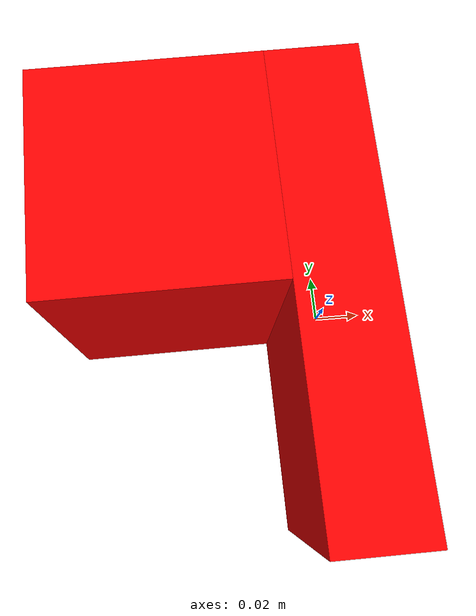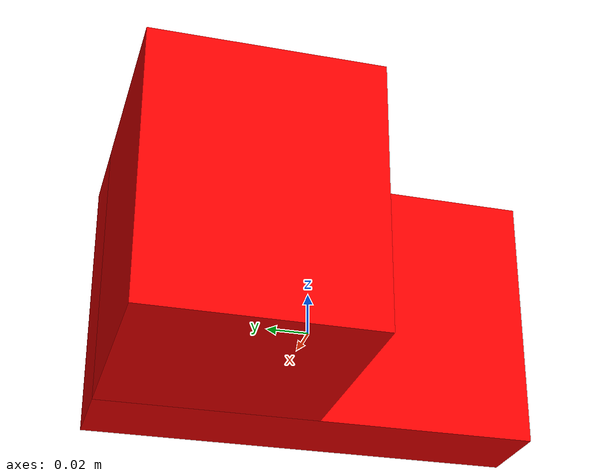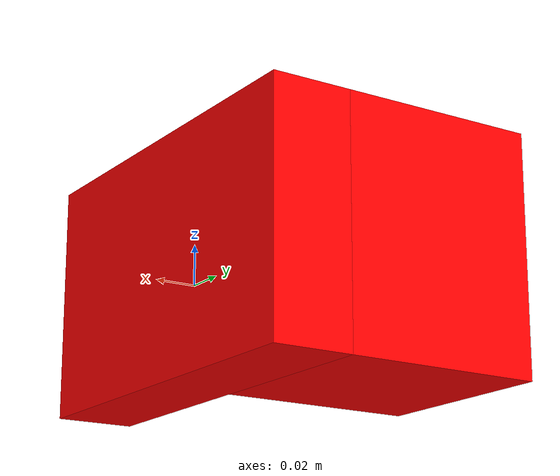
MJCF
<mujoco model="pushed_box">
    <worldbody>
        <body name="pushed_box" pos="0.0 0.0 0.0" quat="1 0 0 1">
            <geom name="pushed_box" pos="0 0 0.01" size="0.1 0.02 0.06" rgba="1 0 0 1.0" type="box" mass="0.5" friction="0.3 0.3 0.3" priority="1"/>
            <geom name="pushed_box_part" pos="0.05 0.07 0.01" size="0.05 0.05 0.06" rgba="1 0 0 1.0" type="box" mass="0.5" friction="0.3 0.3 0.3" priority="1"/>
            <joint name="pushed_Box_joint" type="free"/>
        </body>

    </worldbody>
</mujoco>
